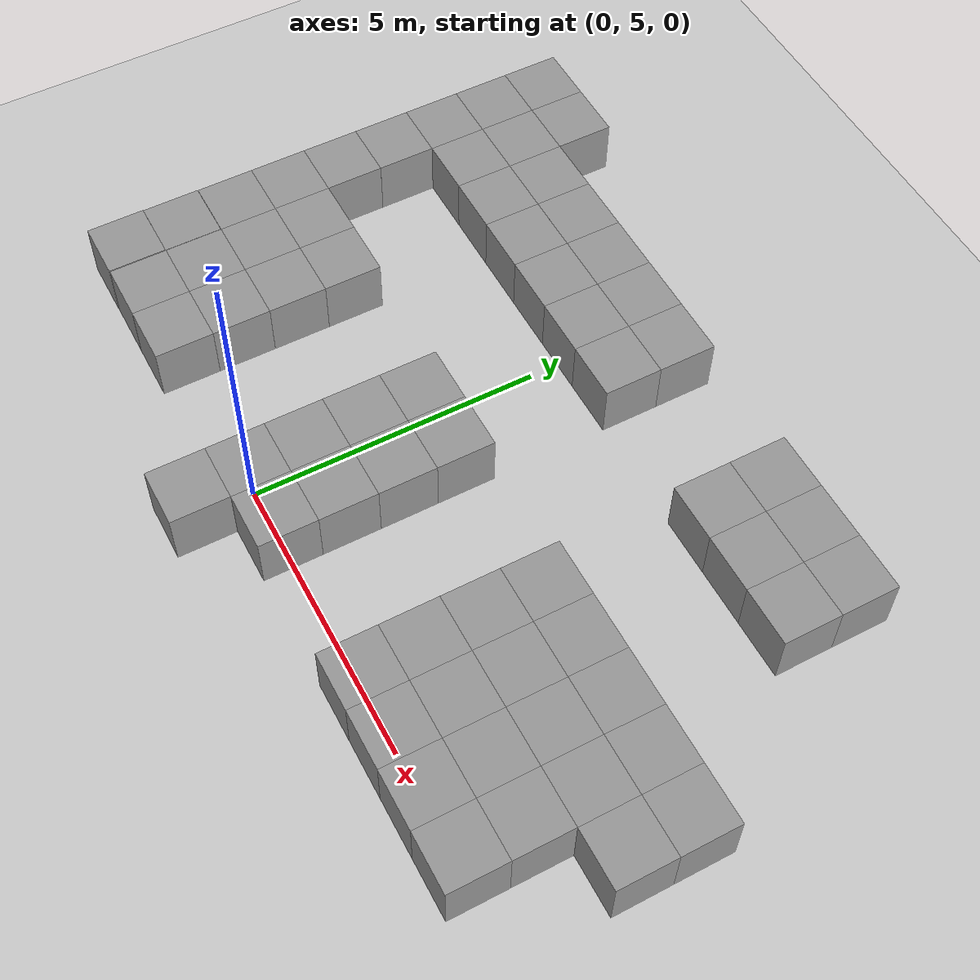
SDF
<sdf version="1.4">
 <world name="default">
  <model name="ground_plane">
   <static>true</static>
   <link name="link">
    <collision name="collision">
     <geometry><plane><normal>0 0 1</normal><size>100 100</size></plane></geometry>
     <surface><friction><ode><mu>100</mu><mu2>50</mu2></ode></friction></surface>
    </collision>
    <visual name="visual">
     <cast_shadows>0</cast_shadows>
     <geometry><plane><normal>0 0 1</normal><size>100 100</size></plane></geometry>
     <material>
      <script><uri>file://media/materials/scripts/gazebo.material</uri><name>Gazebo/Grey</name></script>
     </material>
    </visual>
    <velocity_decay><linear>0</linear><angular>0</angular></velocity_decay>
   </link>
  </model>
  <model name="unit_box_1">
   <pose>-5.01661 4.99523 0.5 0 -0 0.000223</pose>
   <static>true</static>
   <link name="link">
    <inertial>
     <mass>1</mass>
     <inertia><ixx>1</ixx><ixy>0</ixy><ixz>0</ixz><iyy>1</iyy><iyz>0</iyz><izz>1</izz></inertia>
    </inertial>
    <collision name="collision"><geometry><box><size>1 1 1</size></box></geometry></collision>
    <visual name="visual">
     <geometry><box><size>1 1 1</size></box></geometry>
     <material>
      <script><uri>file://media/materials/scripts/gazebo.material</uri><name>Gazebo/Grey</name></script>
     </material>
    </visual>
    <velocity_decay><linear>0</linear><angular>0</angular></velocity_decay>
   </link>
   <static>true</static>
  </model>
  <model name="unit_box_61">
   <pose>-5.0071 5.99581 0.5 0 0 -0.000452</pose>
   <static>true</static>
   <link name="link">
    <inertial>
     <mass>1</mass>
     <inertia><ixx>1</ixx><ixy>0</ixy><ixz>0</ixz><iyy>1</iyy><iyz>0</iyz><izz>1</izz></inertia>
    </inertial>
    <collision name="collision"><geometry><box><size>1 1 1</size></box></geometry></collision>
    <visual name="visual">
     <geometry><box><size>1 1 1</size></box></geometry>
     <material>
      <script><uri>file://media/materials/scripts/gazebo.material</uri><name>Gazebo/Grey</name></script>
     </material>
    </visual>
    <velocity_decay><linear>0</linear><angular>0</angular></velocity_decay>
   </link>
   <static>true</static>
  </model>
  <model name="unit_box_67">
   <pose>-5.00001 6.99999 0.5 0 -0 9e-06</pose>
   <static>true</static>
   <link name="link">
    <inertial>
     <mass>1</mass>
     <inertia><ixx>1</ixx><ixy>0</ixy><ixz>0</ixz><iyy>1</iyy><iyz>0</iyz><izz>1</izz></inertia>
    </inertial>
    <collision name="collision"><geometry><box><size>1 1 1</size></box></geometry></collision>
    <visual name="visual">
     <geometry><box><size>1 1 1</size></box></geometry>
     <material>
      <script><uri>file://media/materials/scripts/gazebo.material</uri><name>Gazebo/Grey</name></script>
     </material>
    </visual>
    <velocity_decay><linear>0</linear><angular>0</angular></velocity_decay>
   </link>
   <static>true</static>
  </model>
  <model name="unit_box_68">
   <pose>-5.00001 7.99999 0.5 0 -0 8e-06</pose>
   <static>true</static>
   <link name="link">
    <inertial>
     <mass>1</mass>
     <inertia><ixx>1</ixx><ixy>0</ixy><ixz>0</ixz><iyy>1</iyy><iyz>0</iyz><izz>1</izz></inertia>
    </inertial>
    <collision name="collision"><geometry><box><size>1 1 1</size></box></geometry></collision>
    <visual name="visual">
     <geometry><box><size>1 1 1</size></box></geometry>
     <material>
      <script><uri>file://media/materials/scripts/gazebo.material</uri><name>Gazebo/Grey</name></script>
     </material>
    </visual>
    <velocity_decay><linear>0</linear><angular>0</angular></velocity_decay>
   </link>
   <static>true</static>
  </model>
  <model name="unit_box_69">
   <pose>-5 8.99999 0.5 0 -0 7e-06</pose>
   <static>true</static>
   <link name="link">
    <inertial>
     <mass>1</mass>
     <inertia><ixx>1</ixx><ixy>0</ixy><ixz>0</ixz><iyy>1</iyy><iyz>0</iyz><izz>1</izz></inertia>
    </inertial>
    <collision name="collision"><geometry><box><size>1 1 1</size></box></geometry></collision>
    <visual name="visual">
     <geometry><box><size>1 1 1</size></box></geometry>
     <material>
      <script><uri>file://media/materials/scripts/gazebo.material</uri><name>Gazebo/Grey</name></script>
     </material>
    </visual>
    <velocity_decay><linear>0</linear><angular>0</angular></velocity_decay>
   </link>
   <static>true</static>
  </model>
  <model name="unit_box_72">
   <pose>-4.99999 9.99999 0.5 0 -0 7e-06</pose>
   <static>true</static>
   <link name="link">
    <inertial>
     <mass>1</mass>
     <inertia><ixx>1</ixx><ixy>0</ixy><ixz>0</ixz><iyy>1</iyy><iyz>0</iyz><izz>1</izz></inertia>
    </inertial>
    <collision name="collision"><geometry><box><size>1 1 1</size></box></geometry></collision>
    <visual name="visual">
     <geometry><box><size>1 1 1</size></box></geometry>
     <material>
      <script><uri>file://media/materials/scripts/gazebo.material</uri><name>Gazebo/Grey</name></script>
     </material>
    </visual>
    <velocity_decay><linear>0</linear><angular>0</angular></velocity_decay>
   </link>
   <static>true</static>
  </model>
  <model name="unit_box_73">
   <pose>-5.00001 11 0.5 0 -0 8e-06</pose>
   <static>true</static>
   <link name="link">
    <inertial>
     <mass>1</mass>
     <inertia><ixx>1</ixx><ixy>0</ixy><ixz>0</ixz><iyy>1</iyy><iyz>0</iyz><izz>1</izz></inertia>
    </inertial>
    <collision name="collision"><geometry><box><size>1 1 1</size></box></geometry></collision>
    <visual name="visual">
     <geometry><box><size>1 1 1</size></box></geometry>
     <material>
      <script><uri>file://media/materials/scripts/gazebo.material</uri><name>Gazebo/Grey</name></script>
     </material>
    </visual>
    <velocity_decay><linear>0</linear><angular>0</angular></velocity_decay>
   </link>
   <static>true</static>
  </model>
  <model name="unit_box_74">
   <pose>-5.00001 12 0.5 0 -0 8e-06</pose>
   <static>true</static>
   <link name="link">
    <inertial>
     <mass>1</mass>
     <inertia><ixx>1</ixx><ixy>0</ixy><ixz>0</ixz><iyy>1</iyy><iyz>0</iyz><izz>1</izz></inertia>
    </inertial>
    <collision name="collision"><geometry><box><size>1 1 1</size></box></geometry></collision>
    <visual name="visual">
     <geometry><box><size>1 1 1</size></box></geometry>
     <material>
      <script><uri>file://media/materials/scripts/gazebo.material</uri><name>Gazebo/Grey</name></script>
     </material>
    </visual>
    <velocity_decay><linear>0</linear><angular>0</angular></velocity_decay>
   </link>
   <static>true</static>
  </model>
  <model name="unit_box_75">
   <pose>-5 13 0.5 0 -0 5e-06</pose>
   <static>true</static>
   <link name="link">
    <inertial>
     <mass>1</mass>
     <inertia><ixx>1</ixx><ixy>0</ixy><ixz>0</ixz><iyy>1</iyy><iyz>0</iyz><izz>1</izz></inertia>
    </inertial>
    <collision name="collision"><geometry><box><size>1 1 1</size></box></geometry></collision>
    <visual name="visual">
     <geometry><box><size>1 1 1</size></box></geometry>
     <material>
      <script><uri>file://media/materials/scripts/gazebo.material</uri><name>Gazebo/Grey</name></script>
     </material>
    </visual>
    <velocity_decay><linear>0</linear><angular>0</angular></velocity_decay>
   </link>
   <static>true</static>
  </model>
  <model name="unit_box_66_0">
   <pose>-4 5.00001 0.5 0 0 -3e-06</pose>
   <link name="link">
    <inertial>
     <mass>1</mass>
     <inertia><ixx>1</ixx><ixy>0</ixy><ixz>0</ixz><iyy>1</iyy><iyz>0</iyz><izz>1</izz></inertia>
    </inertial>
    <collision name="collision"><geometry><box><size>1 1 1</size></box></geometry></collision>
    <visual name="visual">
     <geometry><box><size>1 1 1</size></box></geometry>
     <material>
      <script><uri>file://media/materials/scripts/gazebo.material</uri><name>Gazebo/Grey</name></script>
     </material>
    </visual>
    <velocity_decay><linear>0</linear><angular>0</angular></velocity_decay>
   </link>
   <static>true</static>
  </model>
  <model name="unit_box_67_0">
   <pose>-3.99999 6.00001 0.5 0 0 -3e-06</pose>
   <link name="link">
    <inertial>
     <mass>1</mass>
     <inertia><ixx>1</ixx><ixy>0</ixy><ixz>0</ixz><iyy>1</iyy><iyz>0</iyz><izz>1</izz></inertia>
    </inertial>
    <collision name="collision"><geometry><box><size>1 1 1</size></box></geometry></collision>
    <visual name="visual">
     <geometry><box><size>1 1 1</size></box></geometry>
     <material>
      <script><uri>file://media/materials/scripts/gazebo.material</uri><name>Gazebo/Grey</name></script>
     </material>
    </visual>
    <velocity_decay><linear>0</linear><angular>0</angular></velocity_decay>
   </link>
   <static>true</static>
  </model>
  <model name="unit_box_68_0">
   <pose>-4 7.00001 0.5 0 -0 -2e-06</pose>
   <link name="link">
    <inertial>
     <mass>1</mass>
     <inertia><ixx>1</ixx><ixy>0</ixy><ixz>0</ixz><iyy>1</iyy><iyz>0</iyz><izz>1</izz></inertia>
    </inertial>
    <collision name="collision"><geometry><box><size>1 1 1</size></box></geometry></collision>
    <visual name="visual">
     <geometry><box><size>1 1 1</size></box></geometry>
     <material>
      <script><uri>file://media/materials/scripts/gazebo.material</uri><name>Gazebo/Grey</name></script>
     </material>
    </visual>
    <velocity_decay><linear>0</linear><angular>0</angular></velocity_decay>
   </link>
   <static>true</static>
  </model>
  <model name="unit_box_69_0">
   <pose>-4 8.00001 0.5 0 0 -2e-06</pose>
   <link name="link">
    <inertial>
     <mass>1</mass>
     <inertia><ixx>1</ixx><ixy>0</ixy><ixz>0</ixz><iyy>1</iyy><iyz>0</iyz><izz>1</izz></inertia>
    </inertial>
    <collision name="collision"><geometry><box><size>1 1 1</size></box></geometry></collision>
    <visual name="visual">
     <geometry><box><size>1 1 1</size></box></geometry>
     <material>
      <script><uri>file://media/materials/scripts/gazebo.material</uri><name>Gazebo/Grey</name></script>
     </material>
    </visual>
    <velocity_decay><linear>0</linear><angular>0</angular></velocity_decay>
   </link>
   <static>true</static>
  </model>
  <model name="unit_box_70_0">
   <pose>-4 11 0.5 0 0 -4e-06</pose>
   <link name="link">
    <inertial>
     <mass>1</mass>
     <inertia><ixx>1</ixx><ixy>0</ixy><ixz>0</ixz><iyy>1</iyy><iyz>0</iyz><izz>1</izz></inertia>
    </inertial>
    <collision name="collision"><geometry><box><size>1 1 1</size></box></geometry></collision>
    <visual name="visual">
     <geometry><box><size>1 1 1</size></box></geometry>
     <material>
      <script><uri>file://media/materials/scripts/gazebo.material</uri><name>Gazebo/Grey</name></script>
     </material>
    </visual>
    <velocity_decay><linear>0</linear><angular>0</angular></velocity_decay>
   </link>
   <static>true</static>
  </model>
  <model name="unit_box_71_0">
   <pose>-4 12 0.5 0 0 -4e-06</pose>
   <link name="link">
    <inertial>
     <mass>1</mass>
     <inertia><ixx>1</ixx><ixy>0</ixy><ixz>0</ixz><iyy>1</iyy><iyz>0</iyz><izz>1</izz></inertia>
    </inertial>
    <collision name="collision"><geometry><box><size>1 1 1</size></box></geometry></collision>
    <visual name="visual">
     <geometry><box><size>1 1 1</size></box></geometry>
     <material>
      <script><uri>file://media/materials/scripts/gazebo.material</uri><name>Gazebo/Grey</name></script>
     </material>
    </visual>
    <velocity_decay><linear>0</linear><angular>0</angular></velocity_decay>
   </link>
   <static>true</static>
  </model>
  <model name="unit_box_72_0">
   <pose>-4 13 0.5 0 0 -4e-06</pose>
   <link name="link">
    <inertial>
     <mass>1</mass>
     <inertia><ixx>1</ixx><ixy>0</ixy><ixz>0</ixz><iyy>1</iyy><iyz>0</iyz><izz>1</izz></inertia>
    </inertial>
    <collision name="collision"><geometry><box><size>1 1 1</size></box></geometry></collision>
    <visual name="visual">
     <geometry><box><size>1 1 1</size></box></geometry>
     <material>
      <script><uri>file://media/materials/scripts/gazebo.material</uri><name>Gazebo/Grey</name></script>
     </material>
    </visual>
    <velocity_decay><linear>0</linear><angular>0</angular></velocity_decay>
   </link>
   <static>true</static>
  </model>
  <model name="unit_box_85_0">
   <pose>-3 11 0.5 -0 -0 -4e-06</pose>
   <link name="link">
    <inertial>
     <mass>1</mass>
     <inertia><ixx>1</ixx><ixy>0</ixy><ixz>0</ixz><iyy>1</iyy><iyz>0</iyz><izz>1</izz></inertia>
    </inertial>
    <collision name="collision"><geometry><box><size>1 1 1</size></box></geometry></collision>
    <visual name="visual">
     <geometry><box><size>1 1 1</size></box></geometry>
     <material>
      <script><uri>file://media/materials/scripts/gazebo.material</uri><name>Gazebo/Grey</name></script>
     </material>
    </visual>
    <velocity_decay><linear>0</linear><angular>0</angular></velocity_decay>
   </link>
   <static>true</static>
  </model>
  <model name="unit_box_86_0">
   <pose>-2 11 0.5 -0 -0 -0</pose>
   <link name="link">
    <inertial>
     <mass>1</mass>
     <inertia><ixx>1</ixx><ixy>0</ixy><ixz>0</ixz><iyy>1</iyy><iyz>0</iyz><izz>1</izz></inertia>
    </inertial>
    <collision name="collision"><geometry><box><size>1 1 1</size></box></geometry></collision>
    <visual name="visual">
     <geometry><box><size>1 1 1</size></box></geometry>
     <material>
      <script><uri>file://media/materials/scripts/gazebo.material</uri><name>Gazebo/Grey</name></script>
     </material>
    </visual>
    <velocity_decay><linear>0</linear><angular>0</angular></velocity_decay>
   </link>
   <static>true</static>
  </model>
  <model name="unit_box_87_0">
   <pose>-0.999998 11 0.5 0 -0 2e-06</pose>
   <link name="link">
    <inertial>
     <mass>1</mass>
     <inertia><ixx>1</ixx><ixy>0</ixy><ixz>0</ixz><iyy>1</iyy><iyz>0</iyz><izz>1</izz></inertia>
    </inertial>
    <collision name="collision"><geometry><box><size>1 1 1</size></box></geometry></collision>
    <visual name="visual">
     <geometry><box><size>1 1 1</size></box></geometry>
     <material>
      <script><uri>file://media/materials/scripts/gazebo.material</uri><name>Gazebo/Grey</name></script>
     </material>
    </visual>
    <velocity_decay><linear>0</linear><angular>0</angular></velocity_decay>
   </link>
   <static>true</static>
  </model>
  <model name="unit_box_88_0">
   <pose>9e-06 11 0.5 0 -0 5e-06</pose>
   <link name="link">
    <inertial>
     <mass>1</mass>
     <inertia><ixx>1</ixx><ixy>0</ixy><ixz>0</ixz><iyy>1</iyy><iyz>0</iyz><izz>1</izz></inertia>
    </inertial>
    <collision name="collision"><geometry><box><size>1 1 1</size></box></geometry></collision>
    <visual name="visual">
     <geometry><box><size>1 1 1</size></box></geometry>
     <material>
      <script><uri>file://media/materials/scripts/gazebo.material</uri><name>Gazebo/Grey</name></script>
     </material>
    </visual>
    <velocity_decay><linear>0</linear><angular>0</angular></velocity_decay>
   </link>
   <static>true</static>
  </model>
  <model name="unit_box_89_0">
   <pose>1.00001 11 0.5 0 -0 5e-06</pose>
   <link name="link">
    <inertial>
     <mass>1</mass>
     <inertia><ixx>1</ixx><ixy>0</ixy><ixz>0</ixz><iyy>1</iyy><iyz>0</iyz><izz>1</izz></inertia>
    </inertial>
    <collision name="collision"><geometry><box><size>1 1 1</size></box></geometry></collision>
    <visual name="visual">
     <geometry><box><size>1 1 1</size></box></geometry>
     <material>
      <script><uri>file://media/materials/scripts/gazebo.material</uri><name>Gazebo/Grey</name></script>
     </material>
    </visual>
    <velocity_decay><linear>0</linear><angular>0</angular></velocity_decay>
   </link>
   <static>true</static>
  </model>
  <model name="unit_box_96_0">
   <pose>1.00001 5 0.5 0 -0 0</pose>
   <link name="link">
    <inertial>
     <mass>1</mass>
     <inertia><ixx>1</ixx><ixy>0</ixy><ixz>0</ixz><iyy>1</iyy><iyz>0</iyz><izz>1</izz></inertia>
    </inertial>
    <collision name="collision"><geometry><box><size>1 1 1</size></box></geometry></collision>
    <visual name="visual">
     <geometry><box><size>1 1 1</size></box></geometry>
     <material>
      <script><uri>file://media/materials/scripts/gazebo.material</uri><name>Gazebo/Grey</name></script>
     </material>
    </visual>
    <velocity_decay><linear>0</linear><angular>0</angular></velocity_decay>
   </link>
   <static>true</static>
  </model>
  <model name="unit_box_97_0">
   <pose>1 6.00001 0.5 -0 -0 -1e-06</pose>
   <link name="link">
    <inertial>
     <mass>1</mass>
     <inertia><ixx>1</ixx><ixy>0</ixy><ixz>0</ixz><iyy>1</iyy><iyz>0</iyz><izz>1</izz></inertia>
    </inertial>
    <collision name="collision"><geometry><box><size>1 1 1</size></box></geometry></collision>
    <visual name="visual">
     <geometry><box><size>1 1 1</size></box></geometry>
     <material>
      <script><uri>file://media/materials/scripts/gazebo.material</uri><name>Gazebo/Grey</name></script>
     </material>
    </visual>
    <velocity_decay><linear>0</linear><angular>0</angular></velocity_decay>
   </link>
   <static>true</static>
  </model>
  <model name="unit_box_98_0">
   <pose>1 7.00001 0.5 0 -0 1e-06</pose>
   <link name="link">
    <inertial>
     <mass>1</mass>
     <inertia><ixx>1</ixx><ixy>0</ixy><ixz>0</ixz><iyy>1</iyy><iyz>0</iyz><izz>1</izz></inertia>
    </inertial>
    <collision name="collision"><geometry><box><size>1 1 1</size></box></geometry></collision>
    <visual name="visual">
     <geometry><box><size>1 1 1</size></box></geometry>
     <material>
      <script><uri>file://media/materials/scripts/gazebo.material</uri><name>Gazebo/Grey</name></script>
     </material>
    </visual>
    <velocity_decay><linear>0</linear><angular>0</angular></velocity_decay>
   </link>
   <static>true</static>
  </model>
  <model name="unit_box_99_0">
   <pose>1 8.00001 0.5 -0 -0 -0</pose>
   <link name="link">
    <inertial>
     <mass>1</mass>
     <inertia><ixx>1</ixx><ixy>0</ixy><ixz>0</ixz><iyy>1</iyy><iyz>0</iyz><izz>1</izz></inertia>
    </inertial>
    <collision name="collision"><geometry><box><size>1 1 1</size></box></geometry></collision>
    <visual name="visual">
     <geometry><box><size>1 1 1</size></box></geometry>
     <material>
      <script><uri>file://media/materials/scripts/gazebo.material</uri><name>Gazebo/Grey</name></script>
     </material>
    </visual>
    <velocity_decay><linear>0</linear><angular>0</angular></velocity_decay>
   </link>
   <static>true</static>
  </model>
  <model name="unit_box_100_0">
   <pose>1.00001 12 0.5 0 -0 3e-06</pose>
   <link name="link">
    <inertial>
     <mass>1</mass>
     <inertia><ixx>1</ixx><ixy>0</ixy><ixz>0</ixz><iyy>1</iyy><iyz>0</iyz><izz>1</izz></inertia>
    </inertial>
    <collision name="collision"><geometry><box><size>1 1 1</size></box></geometry></collision>
    <visual name="visual">
     <geometry><box><size>1 1 1</size></box></geometry>
     <material>
      <script><uri>file://media/materials/scripts/gazebo.material</uri><name>Gazebo/Grey</name></script>
     </material>
    </visual>
    <velocity_decay><linear>0</linear><angular>0</angular></velocity_decay>
   </link>
   <static>true</static>
  </model>
  <model name="unit_box_112_0">
   <pose>-2.99999 5 0.5 0 0 -4e-06</pose>
   <link name="link">
    <inertial>
     <mass>1</mass>
     <inertia><ixx>1</ixx><ixy>0</ixy><ixz>0</ixz><iyy>1</iyy><iyz>0</iyz><izz>1</izz></inertia>
    </inertial>
    <collision name="collision"><geometry><box><size>1 1 1</size></box></geometry></collision>
    <visual name="visual">
     <geometry><box><size>1 1 1</size></box></geometry>
     <material>
      <script><uri>file://media/materials/scripts/gazebo.material</uri><name>Gazebo/Grey</name></script>
     </material>
    </visual>
    <velocity_decay><linear>0</linear><angular>0</angular></velocity_decay>
   </link>
   <static>true</static>
  </model>
  <model name="unit_box_113_0">
   <pose>-2.99997 6 0.5 0 0 -5e-06</pose>
   <link name="link">
    <inertial>
     <mass>1</mass>
     <inertia><ixx>1</ixx><ixy>0</ixy><ixz>0</ixz><iyy>1</iyy><iyz>0</iyz><izz>1</izz></inertia>
    </inertial>
    <collision name="collision"><geometry><box><size>1 1 1</size></box></geometry></collision>
    <visual name="visual">
     <geometry><box><size>1 1 1</size></box></geometry>
     <material>
      <script><uri>file://media/materials/scripts/gazebo.material</uri><name>Gazebo/Grey</name></script>
     </material>
    </visual>
    <velocity_decay><linear>0</linear><angular>0</angular></velocity_decay>
   </link>
   <static>true</static>
  </model>
  <model name="unit_box_114_0">
   <pose>-3 7 0.5 -0 -0 -4e-06</pose>
   <link name="link">
    <inertial>
     <mass>1</mass>
     <inertia><ixx>1</ixx><ixy>0</ixy><ixz>0</ixz><iyy>1</iyy><iyz>0</iyz><izz>1</izz></inertia>
    </inertial>
    <collision name="collision"><geometry><box><size>1 1 1</size></box></geometry></collision>
    <visual name="visual">
     <geometry><box><size>1 1 1</size></box></geometry>
     <material>
      <script><uri>file://media/materials/scripts/gazebo.material</uri><name>Gazebo/Grey</name></script>
     </material>
    </visual>
    <velocity_decay><linear>0</linear><angular>0</angular></velocity_decay>
   </link>
   <static>true</static>
  </model>
  <model name="unit_box_115_0">
   <pose>-2.99999 8.00001 0.5 0 0 -1e-06</pose>
   <link name="link">
    <inertial>
     <mass>1</mass>
     <inertia><ixx>1</ixx><ixy>0</ixy><ixz>0</ixz><iyy>1</iyy><iyz>0</iyz><izz>1</izz></inertia>
    </inertial>
    <collision name="collision"><geometry><box><size>1 1 1</size></box></geometry></collision>
    <visual name="visual">
     <geometry><box><size>1 1 1</size></box></geometry>
     <material>
      <script><uri>file://media/materials/scripts/gazebo.material</uri><name>Gazebo/Grey</name></script>
     </material>
    </visual>
    <velocity_decay><linear>0</linear><angular>0</angular></velocity_decay>
   </link>
   <static>true</static>
  </model>
  <model name="unit_box_122_0">
   <pose>1e-06 4 0.5 0 0 -6e-06</pose>
   <link name="link">
    <inertial>
     <mass>1</mass>
     <inertia><ixx>1</ixx><ixy>0</ixy><ixz>0</ixz><iyy>1</iyy><iyz>0</iyz><izz>1</izz></inertia>
    </inertial>
    <collision name="collision"><geometry><box><size>1 1 1</size></box></geometry></collision>
    <visual name="visual">
     <geometry><box><size>1 1 1</size></box></geometry>
     <material>
      <script><uri>file://media/materials/scripts/gazebo.material</uri><name>Gazebo/Grey</name></script>
     </material>
    </visual>
    <velocity_decay><linear>0</linear><angular>0</angular></velocity_decay>
   </link>
   <static>true</static>
  </model>
  <model name="unit_box_123_0">
   <pose>3e-06 5 0.5 0 0 -2e-06</pose>
   <link name="link">
    <inertial>
     <mass>1</mass>
     <inertia><ixx>1</ixx><ixy>0</ixy><ixz>0</ixz><iyy>1</iyy><iyz>0</iyz><izz>1</izz></inertia>
    </inertial>
    <collision name="collision"><geometry><box><size>1 1 1</size></box></geometry></collision>
    <visual name="visual">
     <geometry><box><size>1 1 1</size></box></geometry>
     <material>
      <script><uri>file://media/materials/scripts/gazebo.material</uri><name>Gazebo/Grey</name></script>
     </material>
    </visual>
    <velocity_decay><linear>0</linear><angular>0</angular></velocity_decay>
   </link>
   <static>true</static>
  </model>
  <model name="unit_box_124_0">
   <pose>1e-06 6 0.5 0 0 -1e-06</pose>
   <link name="link">
    <inertial>
     <mass>1</mass>
     <inertia><ixx>1</ixx><ixy>0</ixy><ixz>0</ixz><iyy>1</iyy><iyz>0</iyz><izz>1</izz></inertia>
    </inertial>
    <collision name="collision"><geometry><box><size>1 1 1</size></box></geometry></collision>
    <visual name="visual">
     <geometry><box><size>1 1 1</size></box></geometry>
     <material>
      <script><uri>file://media/materials/scripts/gazebo.material</uri><name>Gazebo/Grey</name></script>
     </material>
    </visual>
    <velocity_decay><linear>0</linear><angular>0</angular></velocity_decay>
   </link>
   <static>true</static>
  </model>
  <model name="unit_box_125_0">
   <pose>-4e-06 7 0.5 -0 -0 -2e-06</pose>
   <link name="link">
    <inertial>
     <mass>1</mass>
     <inertia><ixx>1</ixx><ixy>0</ixy><ixz>0</ixz><iyy>1</iyy><iyz>0</iyz><izz>1</izz></inertia>
    </inertial>
    <collision name="collision"><geometry><box><size>1 1 1</size></box></geometry></collision>
    <visual name="visual">
     <geometry><box><size>1 1 1</size></box></geometry>
     <material>
      <script><uri>file://media/materials/scripts/gazebo.material</uri><name>Gazebo/Grey</name></script>
     </material>
    </visual>
    <velocity_decay><linear>0</linear><angular>0</angular></velocity_decay>
   </link>
   <static>true</static>
  </model>
  <model name="unit_box_126_0">
   <pose>-1e-06 8 0.5 0 0 -2e-06</pose>
   <link name="link">
    <inertial>
     <mass>1</mass>
     <inertia><ixx>1</ixx><ixy>0</ixy><ixz>0</ixz><iyy>1</iyy><iyz>0</iyz><izz>1</izz></inertia>
    </inertial>
    <collision name="collision"><geometry><box><size>1 1 1</size></box></geometry></collision>
    <visual name="visual">
     <geometry><box><size>1 1 1</size></box></geometry>
     <material>
      <script><uri>file://media/materials/scripts/gazebo.material</uri><name>Gazebo/Grey</name></script>
     </material>
    </visual>
    <velocity_decay><linear>0</linear><angular>0</angular></velocity_decay>
   </link>
   <static>true</static>
  </model>
  <model name="unit_box_201_0">
   <pose>4 8.00002 0.5 -0 -0 -2e-06</pose>
   <link name="link">
    <inertial>
     <mass>1</mass>
     <inertia><ixx>1</ixx><ixy>0</ixy><ixz>0</ixz><iyy>1</iyy><iyz>0</iyz><izz>1</izz></inertia>
    </inertial>
    <collision name="collision"><geometry><box><size>1 1 1</size></box></geometry></collision>
    <visual name="visual">
     <geometry><box><size>1 1 1</size></box></geometry>
     <material>
      <script><uri>file://media/materials/scripts/gazebo.material</uri><name>Gazebo/Grey</name></script>
     </material>
    </visual>
    <velocity_decay><linear>0</linear><angular>0</angular></velocity_decay>
   </link>
   <static>true</static>
  </model>
  <model name="unit_box_202_0">
   <pose>4 7 0.5 0 -0 0</pose>
   <link name="link">
    <inertial>
     <mass>1</mass>
     <inertia><ixx>1</ixx><ixy>0</ixy><ixz>0</ixz><iyy>1</iyy><iyz>0</iyz><izz>1</izz></inertia>
    </inertial>
    <collision name="collision"><geometry><box><size>1 1 1</size></box></geometry></collision>
    <visual name="visual">
     <geometry><box><size>1 1 1</size></box></geometry>
     <material>
      <script><uri>file://media/materials/scripts/gazebo.material</uri><name>Gazebo/Grey</name></script>
     </material>
    </visual>
    <velocity_decay><linear>0</linear><angular>0</angular></velocity_decay>
   </link>
   <static>true</static>
  </model>
  <model name="unit_box_204_0">
   <pose>3.99999 6 0.5 0 -0 0</pose>
   <link name="link">
    <inertial>
     <mass>1</mass>
     <inertia><ixx>1</ixx><ixy>0</ixy><ixz>0</ixz><iyy>1</iyy><iyz>0</iyz><izz>1</izz></inertia>
    </inertial>
    <collision name="collision"><geometry><box><size>1 1 1</size></box></geometry></collision>
    <visual name="visual">
     <geometry><box><size>1 1 1</size></box></geometry>
     <material>
      <script><uri>file://media/materials/scripts/gazebo.material</uri><name>Gazebo/Grey</name></script>
     </material>
    </visual>
    <velocity_decay><linear>0</linear><angular>0</angular></velocity_decay>
   </link>
   <static>true</static>
  </model>
  <model name="unit_box_205_0">
   <pose>3.99999 4.99999 0.5 0 -0 1e-06</pose>
   <link name="link">
    <inertial>
     <mass>1</mass>
     <inertia><ixx>1</ixx><ixy>0</ixy><ixz>0</ixz><iyy>1</iyy><iyz>0</iyz><izz>1</izz></inertia>
    </inertial>
    <collision name="collision"><geometry><box><size>1 1 1</size></box></geometry></collision>
    <visual name="visual">
     <geometry><box><size>1 1 1</size></box></geometry>
     <material>
      <script><uri>file://media/materials/scripts/gazebo.material</uri><name>Gazebo/Grey</name></script>
     </material>
    </visual>
    <velocity_decay><linear>0</linear><angular>0</angular></velocity_decay>
   </link>
   <static>true</static>
  </model>
  <model name="unit_box_212_0">
   <pose>4.99999 5 0.5 0 -0 1e-06</pose>
   <link name="link">
    <inertial>
     <mass>1</mass>
     <inertia><ixx>1</ixx><ixy>0</ixy><ixz>0</ixz><iyy>1</iyy><iyz>0</iyz><izz>1</izz></inertia>
    </inertial>
    <collision name="collision"><geometry><box><size>1 1 1</size></box></geometry></collision>
    <visual name="visual">
     <geometry><box><size>1 1 1</size></box></geometry>
     <material>
      <script><uri>file://media/materials/scripts/gazebo.material</uri><name>Gazebo/Grey</name></script>
     </material>
    </visual>
    <velocity_decay><linear>0</linear><angular>0</angular></velocity_decay>
   </link>
   <static>true</static>
  </model>
  <model name="unit_box_213_0">
   <pose>6 5 0.5 0 -0 1e-06</pose>
   <link name="link">
    <inertial>
     <mass>1</mass>
     <inertia><ixx>1</ixx><ixy>0</ixy><ixz>0</ixz><iyy>1</iyy><iyz>0</iyz><izz>1</izz></inertia>
    </inertial>
    <collision name="collision"><geometry><box><size>1 1 1</size></box></geometry></collision>
    <visual name="visual">
     <geometry><box><size>1 1 1</size></box></geometry>
     <material>
      <script><uri>file://media/materials/scripts/gazebo.material</uri><name>Gazebo/Grey</name></script>
     </material>
    </visual>
    <velocity_decay><linear>0</linear><angular>0</angular></velocity_decay>
   </link>
   <static>true</static>
  </model>
  <model name="unit_box_214_0">
   <pose>7.00001 5 0.5 0 -0 3e-06</pose>
   <link name="link">
    <inertial>
     <mass>1</mass>
     <inertia><ixx>1</ixx><ixy>0</ixy><ixz>0</ixz><iyy>1</iyy><iyz>0</iyz><izz>1</izz></inertia>
    </inertial>
    <collision name="collision"><geometry><box><size>1 1 1</size></box></geometry></collision>
    <visual name="visual">
     <geometry><box><size>1 1 1</size></box></geometry>
     <material>
      <script><uri>file://media/materials/scripts/gazebo.material</uri><name>Gazebo/Grey</name></script>
     </material>
    </visual>
    <velocity_decay><linear>0</linear><angular>0</angular></velocity_decay>
   </link>
   <static>true</static>
  </model>
  <model name="unit_box_218_0">
   <pose>7 6 0.5 0 -0 3e-06</pose>
   <link name="link">
    <inertial>
     <mass>1</mass>
     <inertia><ixx>1</ixx><ixy>0</ixy><ixz>0</ixz><iyy>1</iyy><iyz>0</iyz><izz>1</izz></inertia>
    </inertial>
    <collision name="collision"><geometry><box><size>1 1 1</size></box></geometry></collision>
    <visual name="visual">
     <geometry><box><size>1 1 1</size></box></geometry>
     <material>
      <script><uri>file://media/materials/scripts/gazebo.material</uri><name>Gazebo/Grey</name></script>
     </material>
    </visual>
    <velocity_decay><linear>0</linear><angular>0</angular></velocity_decay>
   </link>
   <static>true</static>
  </model>
  <model name="unit_box_219_0">
   <pose>6 6 0.5 0 -0 1e-06</pose>
   <link name="link">
    <inertial>
     <mass>1</mass>
     <inertia><ixx>1</ixx><ixy>0</ixy><ixz>0</ixz><iyy>1</iyy><iyz>0</iyz><izz>1</izz></inertia>
    </inertial>
    <collision name="collision"><geometry><box><size>1 1 1</size></box></geometry></collision>
    <visual name="visual">
     <geometry><box><size>1 1 1</size></box></geometry>
     <material>
      <script><uri>file://media/materials/scripts/gazebo.material</uri><name>Gazebo/Grey</name></script>
     </material>
    </visual>
    <velocity_decay><linear>0</linear><angular>0</angular></velocity_decay>
   </link>
   <static>true</static>
  </model>
  <model name="unit_box_220_0">
   <pose>5 6 0.5 0 -0 1e-06</pose>
   <link name="link">
    <inertial>
     <mass>1</mass>
     <inertia><ixx>1</ixx><ixy>0</ixy><ixz>0</ixz><iyy>1</iyy><iyz>0</iyz><izz>1</izz></inertia>
    </inertial>
    <collision name="collision"><geometry><box><size>1 1 1</size></box></geometry></collision>
    <visual name="visual">
     <geometry><box><size>1 1 1</size></box></geometry>
     <material>
      <script><uri>file://media/materials/scripts/gazebo.material</uri><name>Gazebo/Grey</name></script>
     </material>
    </visual>
    <velocity_decay><linear>0</linear><angular>0</angular></velocity_decay>
   </link>
   <static>true</static>
  </model>
  <model name="unit_box_221_0">
   <pose>5 7 0.5 0 -0 1e-06</pose>
   <link name="link">
    <inertial>
     <mass>1</mass>
     <inertia><ixx>1</ixx><ixy>0</ixy><ixz>0</ixz><iyy>1</iyy><iyz>0</iyz><izz>1</izz></inertia>
    </inertial>
    <collision name="collision"><geometry><box><size>1 1 1</size></box></geometry></collision>
    <visual name="visual">
     <geometry><box><size>1 1 1</size></box></geometry>
     <material>
      <script><uri>file://media/materials/scripts/gazebo.material</uri><name>Gazebo/Grey</name></script>
     </material>
    </visual>
    <velocity_decay><linear>0</linear><angular>0</angular></velocity_decay>
   </link>
   <static>true</static>
  </model>
  <model name="unit_box_222_0">
   <pose>6 7 0.5 0 -0 1e-06</pose>
   <link name="link">
    <inertial>
     <mass>1</mass>
     <inertia><ixx>1</ixx><ixy>0</ixy><ixz>0</ixz><iyy>1</iyy><iyz>0</iyz><izz>1</izz></inertia>
    </inertial>
    <collision name="collision"><geometry><box><size>1 1 1</size></box></geometry></collision>
    <visual name="visual">
     <geometry><box><size>1 1 1</size></box></geometry>
     <material>
      <script><uri>file://media/materials/scripts/gazebo.material</uri><name>Gazebo/Grey</name></script>
     </material>
    </visual>
    <velocity_decay><linear>0</linear><angular>0</angular></velocity_decay>
   </link>
   <static>true</static>
  </model>
  <model name="unit_box_223_0">
   <pose>7 7 0.5 0 -0 2e-06</pose>
   <link name="link">
    <inertial>
     <mass>1</mass>
     <inertia><ixx>1</ixx><ixy>0</ixy><ixz>0</ixz><iyy>1</iyy><iyz>0</iyz><izz>1</izz></inertia>
    </inertial>
    <collision name="collision"><geometry><box><size>1 1 1</size></box></geometry></collision>
    <visual name="visual">
     <geometry><box><size>1 1 1</size></box></geometry>
     <material>
      <script><uri>file://media/materials/scripts/gazebo.material</uri><name>Gazebo/Grey</name></script>
     </material>
    </visual>
    <velocity_decay><linear>0</linear><angular>0</angular></velocity_decay>
   </link>
   <static>true</static>
  </model>
  <model name="unit_box_224_0">
   <pose>8 7.00001 0.5 0 -0 2e-06</pose>
   <link name="link">
    <inertial>
     <mass>1</mass>
     <inertia><ixx>1</ixx><ixy>0</ixy><ixz>0</ixz><iyy>1</iyy><iyz>0</iyz><izz>1</izz></inertia>
    </inertial>
    <collision name="collision"><geometry><box><size>1 1 1</size></box></geometry></collision>
    <visual name="visual">
     <geometry><box><size>1 1 1</size></box></geometry>
     <material>
      <script><uri>file://media/materials/scripts/gazebo.material</uri><name>Gazebo/Grey</name></script>
     </material>
    </visual>
    <velocity_decay><linear>0</linear><angular>0</angular></velocity_decay>
   </link>
   <static>true</static>
  </model>
  <model name="unit_box_230_0">
   <pose>8 8.00001 0.5 0 -0 5e-06</pose>
   <link name="link">
    <inertial>
     <mass>1</mass>
     <inertia><ixx>1</ixx><ixy>0</ixy><ixz>0</ixz><iyy>1</iyy><iyz>0</iyz><izz>1</izz></inertia>
    </inertial>
    <collision name="collision"><geometry><box><size>1 1 1</size></box></geometry></collision>
    <visual name="visual">
     <geometry><box><size>1 1 1</size></box></geometry>
     <material>
      <script><uri>file://media/materials/scripts/gazebo.material</uri><name>Gazebo/Grey</name></script>
     </material>
    </visual>
    <velocity_decay><linear>0</linear><angular>0</angular></velocity_decay>
   </link>
   <static>true</static>
  </model>
  <model name="unit_box_231_0">
   <pose>7 8.00001 0.5 0 -0 5e-06</pose>
   <link name="link">
    <inertial>
     <mass>1</mass>
     <inertia><ixx>1</ixx><ixy>0</ixy><ixz>0</ixz><iyy>1</iyy><iyz>0</iyz><izz>1</izz></inertia>
    </inertial>
    <collision name="collision"><geometry><box><size>1 1 1</size></box></geometry></collision>
    <visual name="visual">
     <geometry><box><size>1 1 1</size></box></geometry>
     <material>
      <script><uri>file://media/materials/scripts/gazebo.material</uri><name>Gazebo/Grey</name></script>
     </material>
    </visual>
    <velocity_decay><linear>0</linear><angular>0</angular></velocity_decay>
   </link>
   <static>true</static>
  </model>
  <model name="unit_box_232_0">
   <pose>6 8.00001 0.5 0 -0 2e-06</pose>
   <link name="link">
    <inertial>
     <mass>1</mass>
     <inertia><ixx>1</ixx><ixy>0</ixy><ixz>0</ixz><iyy>1</iyy><iyz>0</iyz><izz>1</izz></inertia>
    </inertial>
    <collision name="collision"><geometry><box><size>1 1 1</size></box></geometry></collision>
    <visual name="visual">
     <geometry><box><size>1 1 1</size></box></geometry>
     <material>
      <script><uri>file://media/materials/scripts/gazebo.material</uri><name>Gazebo/Grey</name></script>
     </material>
    </visual>
    <velocity_decay><linear>0</linear><angular>0</angular></velocity_decay>
   </link>
   <static>true</static>
  </model>
  <model name="unit_box_233_0">
   <pose>5 8 0.5 0 -0 2e-06</pose>
   <link name="link">
    <inertial>
     <mass>1</mass>
     <inertia><ixx>1</ixx><ixy>0</ixy><ixz>0</ixz><iyy>1</iyy><iyz>0</iyz><izz>1</izz></inertia>
    </inertial>
    <collision name="collision"><geometry><box><size>1 1 1</size></box></geometry></collision>
    <visual name="visual">
     <geometry><box><size>1 1 1</size></box></geometry>
     <material>
      <script><uri>file://media/materials/scripts/gazebo.material</uri><name>Gazebo/Grey</name></script>
     </material>
    </visual>
    <velocity_decay><linear>0</linear><angular>0</angular></velocity_decay>
   </link>
   <static>true</static>
  </model>
  <model name="unit_box_311">
   <pose>4 11 0.5 0 -0 3e-06</pose>
   <link name="link">
    <inertial>
     <mass>1</mass>
     <inertia><ixx>1</ixx><ixy>0</ixy><ixz>0</ixz><iyy>1</iyy><iyz>0</iyz><izz>1</izz></inertia>
    </inertial>
    <collision name="collision"><geometry><box><size>1 1 1</size></box></geometry></collision>
    <visual name="visual">
     <geometry><box><size>1 1 1</size></box></geometry>
     <material>
      <script><uri>file://media/materials/scripts/gazebo.material</uri><name>Gazebo/Grey</name></script>
     </material>
    </visual>
    <velocity_decay><linear>0</linear><angular>0</angular></velocity_decay>
   </link>
   <static>true</static>
  </model>
  <model name="unit_box_312">
   <pose>4 12 0.5 0 -0 3e-06</pose>
   <link name="link">
    <inertial>
     <mass>1</mass>
     <inertia><ixx>1</ixx><ixy>0</ixy><ixz>0</ixz><iyy>1</iyy><iyz>0</iyz><izz>1</izz></inertia>
    </inertial>
    <collision name="collision"><geometry><box><size>1 1 1</size></box></geometry></collision>
    <visual name="visual">
     <geometry><box><size>1 1 1</size></box></geometry>
     <material>
      <script><uri>file://media/materials/scripts/gazebo.material</uri><name>Gazebo/Grey</name></script>
     </material>
    </visual>
    <velocity_decay><linear>0</linear><angular>0</angular></velocity_decay>
   </link>
   <static>true</static>
  </model>
  <model name="unit_box_315">
   <pose>5 11 0.5 0 -0 3e-06</pose>
   <link name="link">
    <inertial>
     <mass>1</mass>
     <inertia><ixx>1</ixx><ixy>0</ixy><ixz>0</ixz><iyy>1</iyy><iyz>0</iyz><izz>1</izz></inertia>
    </inertial>
    <collision name="collision"><geometry><box><size>1 1 1</size></box></geometry></collision>
    <visual name="visual">
     <geometry><box><size>1 1 1</size></box></geometry>
     <material>
      <script><uri>file://media/materials/scripts/gazebo.material</uri><name>Gazebo/Grey</name></script>
     </material>
    </visual>
    <velocity_decay><linear>0</linear><angular>0</angular></velocity_decay>
   </link>
   <static>true</static>
  </model>
  <model name="unit_box_316">
   <pose>5 12 0.5 0 -0 3e-06</pose>
   <link name="link">
    <inertial>
     <mass>1</mass>
     <inertia><ixx>1</ixx><ixy>0</ixy><ixz>0</ixz><iyy>1</iyy><iyz>0</iyz><izz>1</izz></inertia>
    </inertial>
    <collision name="collision"><geometry><box><size>1 1 1</size></box></geometry></collision>
    <visual name="visual">
     <geometry><box><size>1 1 1</size></box></geometry>
     <material>
      <script><uri>file://media/materials/scripts/gazebo.material</uri><name>Gazebo/Grey</name></script>
     </material>
    </visual>
    <velocity_decay><linear>0</linear><angular>0</angular></velocity_decay>
   </link>
   <static>true</static>
  </model>
  <model name="unit_box_319">
   <pose>6 11 0.5 0 -0 5e-06</pose>
   <link name="link">
    <inertial>
     <mass>1</mass>
     <inertia><ixx>1</ixx><ixy>0</ixy><ixz>0</ixz><iyy>1</iyy><iyz>0</iyz><izz>1</izz></inertia>
    </inertial>
    <collision name="collision"><geometry><box><size>1 1 1</size></box></geometry></collision>
    <visual name="visual">
     <geometry><box><size>1 1 1</size></box></geometry>
     <material>
      <script><uri>file://media/materials/scripts/gazebo.material</uri><name>Gazebo/Grey</name></script>
     </material>
    </visual>
    <velocity_decay><linear>0</linear><angular>0</angular></velocity_decay>
   </link>
   <static>true</static>
  </model>
  <model name="unit_box_320">
   <pose>6 12 0.5 0 -0 5e-06</pose>
   <link name="link">
    <inertial>
     <mass>1</mass>
     <inertia><ixx>1</ixx><ixy>0</ixy><ixz>0</ixz><iyy>1</iyy><iyz>0</iyz><izz>1</izz></inertia>
    </inertial>
    <collision name="collision"><geometry><box><size>1 1 1</size></box></geometry></collision>
    <visual name="visual">
     <geometry><box><size>1 1 1</size></box></geometry>
     <material>
      <script><uri>file://media/materials/scripts/gazebo.material</uri><name>Gazebo/Grey</name></script>
     </material>
    </visual>
    <velocity_decay><linear>0</linear><angular>0</angular></velocity_decay>
   </link>
   <static>true</static>
  </model>
  <model name="unit_box_405">
   <pose>-3 12 0.5 0 -0 0</pose>
   <link name="link">
    <inertial>
     <mass>1</mass>
     <inertia><ixx>1</ixx><ixy>0</ixy><ixz>0</ixz><iyy>1</iyy><iyz>0</iyz><izz>1</izz></inertia>
    </inertial>
    <collision name="collision"><geometry><box><size>1 1 1</size></box></geometry></collision>
    <visual name="visual">
     <geometry><box><size>1 1 1</size></box></geometry>
     <material>
      <script><uri>file://media/materials/scripts/gazebo.material</uri><name>Gazebo/Grey</name></script>
     </material>
    </visual>
    <velocity_decay><linear>0</linear><angular>0</angular></velocity_decay>
   </link>
   <static>true</static>
  </model>
  <model name="unit_box_406">
   <pose>-2 12.0001 0.5 0 0 -1e-06</pose>
   <link name="link">
    <inertial>
     <mass>1</mass>
     <inertia><ixx>1</ixx><ixy>0</ixy><ixz>0</ixz><iyy>1</iyy><iyz>0</iyz><izz>1</izz></inertia>
    </inertial>
    <collision name="collision"><geometry><box><size>1 1 1</size></box></geometry></collision>
    <visual name="visual">
     <geometry><box><size>1 1 1</size></box></geometry>
     <material>
      <script><uri>file://media/materials/scripts/gazebo.material</uri><name>Gazebo/Grey</name></script>
     </material>
    </visual>
    <velocity_decay><linear>0</linear><angular>0</angular></velocity_decay>
   </link>
   <static>true</static>
  </model>
  <model name="unit_box_407">
   <pose>-0.999996 12 0.5 0 -0 0</pose>
   <link name="link">
    <inertial>
     <mass>1</mass>
     <inertia><ixx>1</ixx><ixy>0</ixy><ixz>0</ixz><iyy>1</iyy><iyz>0</iyz><izz>1</izz></inertia>
    </inertial>
    <collision name="collision"><geometry><box><size>1 1 1</size></box></geometry></collision>
    <visual name="visual">
     <geometry><box><size>1 1 1</size></box></geometry>
     <material>
      <script><uri>file://media/materials/scripts/gazebo.material</uri><name>Gazebo/Grey</name></script>
     </material>
    </visual>
    <velocity_decay><linear>0</linear><angular>0</angular></velocity_decay>
   </link>
   <static>true</static>
  </model>
  <model name="unit_box_408">
   <pose>5e-06 12 0.5 0 -0 2e-06</pose>
   <link name="link">
    <inertial>
     <mass>1</mass>
     <inertia><ixx>1</ixx><ixy>0</ixy><ixz>0</ixz><iyy>1</iyy><iyz>0</iyz><izz>1</izz></inertia>
    </inertial>
    <collision name="collision"><geometry><box><size>1 1 1</size></box></geometry></collision>
    <visual name="visual">
     <geometry><box><size>1 1 1</size></box></geometry>
     <material>
      <script><uri>file://media/materials/scripts/gazebo.material</uri><name>Gazebo/Grey</name></script>
     </material>
    </visual>
    <velocity_decay><linear>0</linear><angular>0</angular></velocity_decay>
   </link>
   <static>true</static>
  </model>
 </world>
</sdf>
